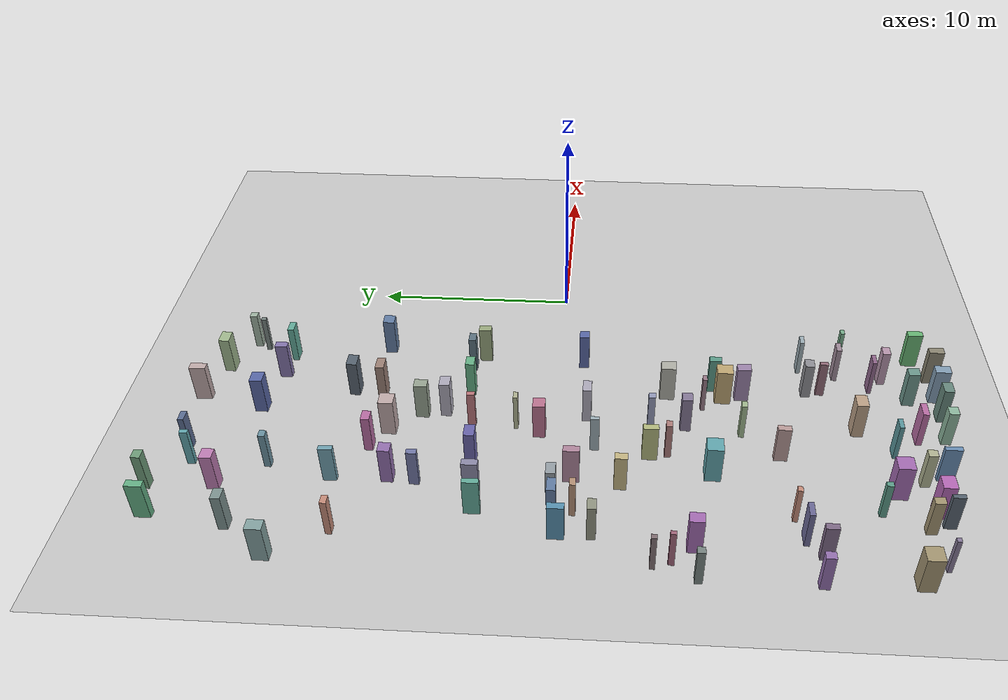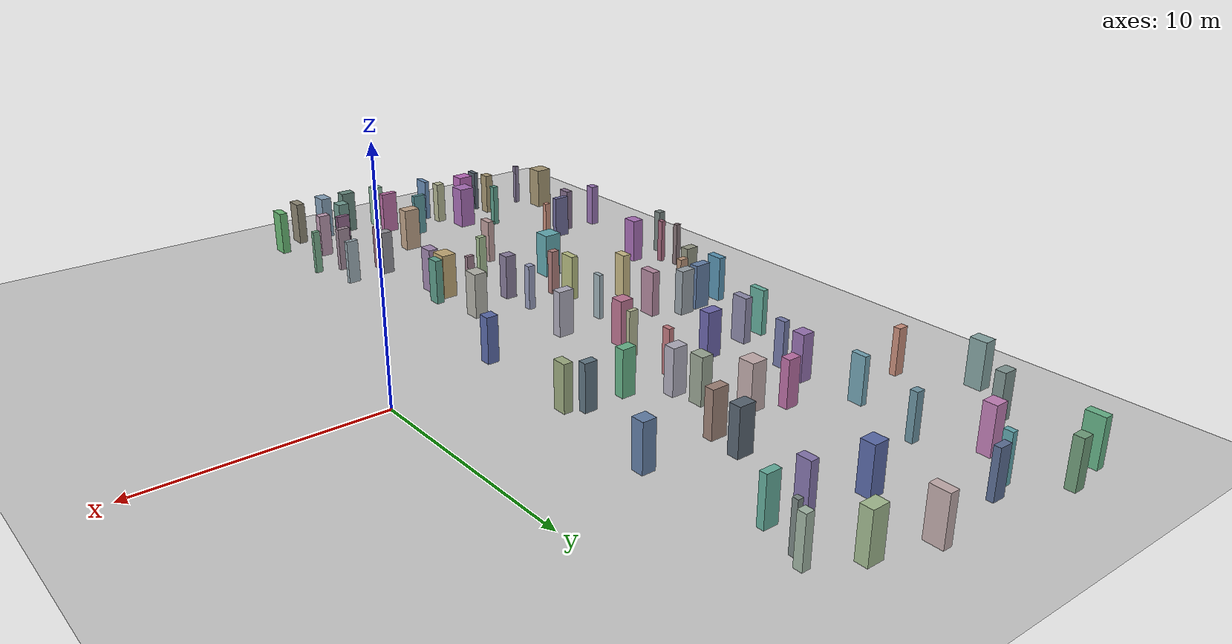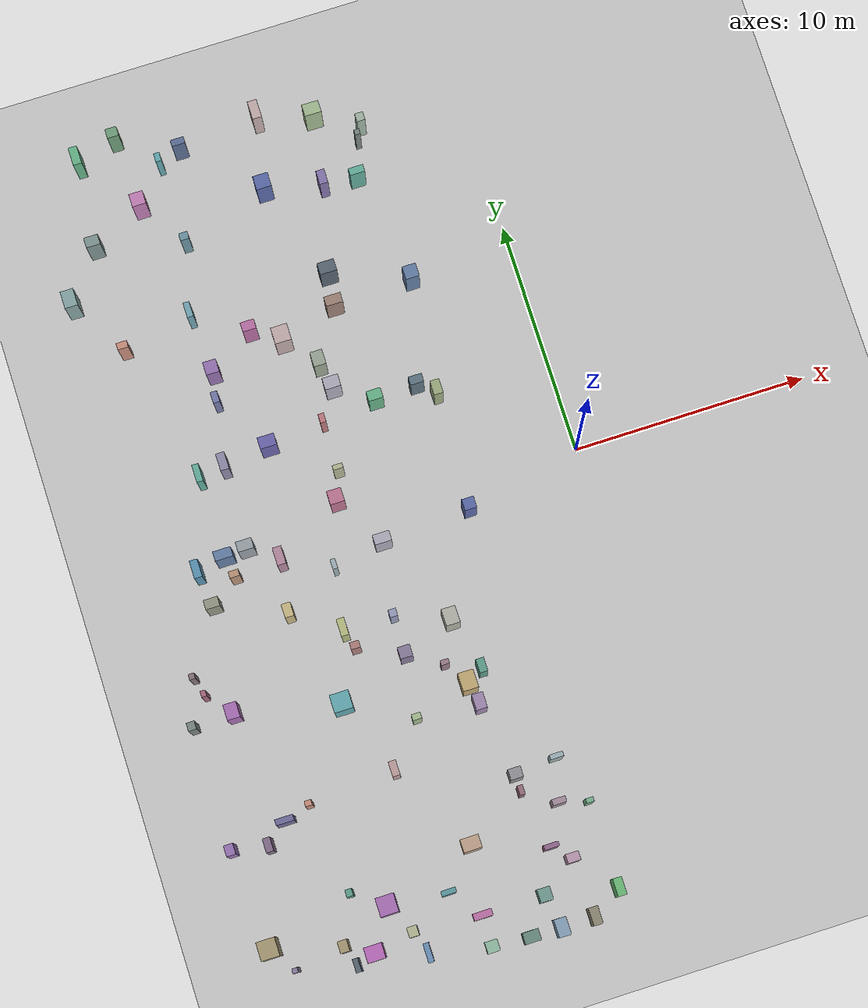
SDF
<sdf version="1.6">
 <world name="mockamap_single_floor">
  <include><uri>model://sun</uri></include>
  <include><uri>model://ground_plane</uri></include>
  <model name="mockamap_box_000">
   <static>true</static>
   <pose>-15.0321 -17.5841 1.0000 0 0 0</pose>
   <link name="link">
    <collision name="collision"><geometry><box><size>0.2267 0.5743 2.0000</size></box></geometry></collision>
    <visual name="visual">
     <geometry><box><size>0.2267 0.5743 2.0000</size></box></geometry>
     <material><ambient>0.350 0.400 0.450 1.000</ambient><diffuse>0.350 0.400 0.450 1.000</diffuse></material>
    </visual>
   </link>
  </model>
  <model name="mockamap_box_003">
   <static>true</static>
   <pose>-15.3379 3.4456 1.0000 0 0 0</pose>
   <link name="link">
    <collision name="collision"><geometry><box><size>0.2746 0.7535 2.0000</size></box></geometry></collision>
    <visual name="visual">
     <geometry><box><size>0.2746 0.7535 2.0000</size></box></geometry>
     <material><ambient>0.399 0.691 0.621 1.000</ambient><diffuse>0.399 0.691 0.621 1.000</diffuse></material>
    </visual>
   </link>
  </model>
  <model name="mockamap_box_010">
   <static>true</static>
   <pose>-13.1838 -15.6728 1.0000 0 0 0</pose>
   <link name="link">
    <collision name="collision"><geometry><box><size>0.7708 0.7841 2.0000</size></box></geometry></collision>
    <visual name="visual">
     <geometry><box><size>0.7708 0.7841 2.0000</size></box></geometry>
     <material><ambient>0.665 0.435 0.720 1.000</ambient><diffuse>0.665 0.435 0.720 1.000</diffuse></material>
    </visual>
   </link>
  </model>
  <model name="mockamap_box_013">
   <static>true</static>
   <pose>-9.7718 1.9524 1.0000 0 0 0</pose>
   <link name="link">
    <collision name="collision"><geometry><box><size>0.4269 0.2035 2.0000</size></box></geometry></collision>
    <visual name="visual">
     <geometry><box><size>0.4269 0.2035 2.0000</size></box></geometry>
     <material><ambient>0.715 0.726 0.591 1.000</ambient><diffuse>0.715 0.726 0.591 1.000</diffuse></material>
    </visual>
   </link>
  </model>
  <model name="mockamap_box_014">
   <static>true</static>
   <pose>-12.9841 13.2362 1.0000 0 0 0</pose>
   <link name="link">
    <collision name="collision"><geometry><box><size>0.3698 0.3169 2.0000</size></box></geometry></collision>
    <visual name="visual">
     <geometry><box><size>0.3698 0.3169 2.0000</size></box></geometry>
     <material><ambient>0.431 0.589 0.648 1.000</ambient><diffuse>0.431 0.589 0.648 1.000</diffuse></material>
    </visual>
   </link>
  </model>
  <model name="mockamap_box_015">
   <static>true</static>
   <pose>-13.5221 7.5409 1.0000 0 0 0</pose>
   <link name="link">
    <collision name="collision"><geometry><box><size>0.5592 0.5615 2.0000</size></box></geometry></collision>
    <visual name="visual">
     <geometry><box><size>0.5592 0.5615 2.0000</size></box></geometry>
     <material><ambient>0.597 0.453 0.705 1.000</ambient><diffuse>0.597 0.453 0.705 1.000</diffuse></material>
    </visual>
   </link>
  </model>
  <model name="mockamap_box_016">
   <static>true</static>
   <pose>-7.3450 -8.0702 1.0000 0 0 0</pose>
   <link name="link">
    <collision name="collision"><geometry><box><size>0.6593 0.7731 2.0000</size></box></geometry></collision>
    <visual name="visual">
     <geometry><box><size>0.6593 0.7731 2.0000</size></box></geometry>
     <material><ambient>0.764 0.666 0.462 1.000</ambient><diffuse>0.764 0.666 0.462 1.000</diffuse></material>
    </visual>
   </link>
  </model>
  <model name="mockamap_box_017">
   <static>true</static>
   <pose>-18.5719 -6.4431 1.0000 0 0 0</pose>
   <link name="link">
    <collision name="collision"><geometry><box><size>0.3442 0.3489 2.0000</size></box></geometry></collision>
    <visual name="visual">
     <geometry><box><size>0.3442 0.3489 2.0000</size></box></geometry>
     <material><ambient>0.480 0.530 0.519 1.000</ambient><diffuse>0.480 0.530 0.519 1.000</diffuse></material>
    </visual>
   </link>
  </model>
  <model name="mockamap_box_018">
   <static>true</static>
   <pose>-6.2782 16.9180 1.0000 0 0 0</pose>
   <link name="link">
    <collision name="collision"><geometry><box><size>0.7214 0.5166 2.0000</size></box></geometry></collision>
    <visual name="visual">
     <geometry><box><size>0.7214 0.5166 2.0000</size></box></geometry>
     <material><ambient>0.647 0.743 0.576 1.000</ambient><diffuse>0.647 0.743 0.576 1.000</diffuse></material>
    </visual>
   </link>
  </model>
  <model name="mockamap_box_019">
   <static>true</static>
   <pose>-10.6722 -15.9207 1.0000 0 0 0</pose>
   <link name="link">
    <collision name="collision"><geometry><box><size>0.6190 0.2158 2.0000</size></box></geometry></collision>
    <visual name="visual">
     <geometry><box><size>0.6190 0.2158 2.0000</size></box></geometry>
     <material><ambient>0.363 0.607 0.633 1.000</ambient><diffuse>0.363 0.607 0.633 1.000</diffuse></material>
    </visual>
   </link>
  </model>
  <model name="mockamap_box_021">
   <static>true</static>
   <pose>-8.9207 -1.4252 1.0000 0 0 0</pose>
   <link name="link">
    <collision name="collision"><geometry><box><size>0.7100 0.4261 2.0000</size></box></geometry></collision>
    <visual name="visual">
     <geometry><box><size>0.7100 0.4261 2.0000</size></box></geometry>
     <material><ambient>0.696 0.683 0.747 1.000</ambient><diffuse>0.696 0.683 0.747 1.000</diffuse></material>
    </visual>
   </link>
  </model>
  <model name="mockamap_box_022">
   <static>true</static>
   <pose>-8.0454 -18.6199 1.0000 0 0 0</pose>
   <link name="link">
    <collision name="collision"><geometry><box><size>0.6732 0.4795 2.0000</size></box></geometry></collision>
    <visual name="visual">
     <geometry><box><size>0.6732 0.4795 2.0000</size></box></geometry>
     <material><ambient>0.413 0.547 0.504 1.000</ambient><diffuse>0.413 0.547 0.504 1.000</diffuse></material>
    </visual>
   </link>
  </model>
  <model name="mockamap_box_024">
   <static>true</static>
   <pose>-11.2739 -10.5561 1.0000 0 0 0</pose>
   <link name="link">
    <collision name="collision"><geometry><box><size>0.3173 0.6329 2.0000</size></box></geometry></collision>
    <visual name="visual">
     <geometry><box><size>0.3173 0.6329 2.0000</size></box></geometry>
     <material><ambient>0.746 0.624 0.618 1.000</ambient><diffuse>0.746 0.624 0.618 1.000</diffuse></material>
    </visual>
   </link>
  </model>
  <model name="mockamap_box_025">
   <static>true</static>
   <pose>-13.7292 6.2781 1.0000 0 0 0</pose>
   <link name="link">
    <collision name="collision"><geometry><box><size>0.2813 0.4722 2.0000</size></box></geometry></collision>
    <visual name="visual">
     <geometry><box><size>0.2813 0.4722 2.0000</size></box></geometry>
     <material><ambient>0.462 0.488 0.675 1.000</ambient><diffuse>0.462 0.488 0.675 1.000</diffuse></material>
    </visual>
   </link>
  </model>
  <model name="mockamap_box_026">
   <static>true</static>
   <pose>-11.1184 -1.8605 1.0000 0 0 0</pose>
   <link name="link">
    <collision name="collision"><geometry><box><size>0.2078 0.4240 2.0000</size></box></geometry></collision>
    <visual name="visual">
     <geometry><box><size>0.2078 0.4240 2.0000</size></box></geometry>
     <material><ambient>0.629 0.701 0.732 1.000</ambient><diffuse>0.629 0.701 0.732 1.000</diffuse></material>
    </visual>
   </link>
  </model>
  <model name="mockamap_box_027">
   <static>true</static>
   <pose>-14.9859 -10.8422 1.0000 0 0 0</pose>
   <link name="link">
    <collision name="collision"><geometry><box><size>0.2858 0.2299 2.0000</size></box></geometry></collision>
    <visual name="visual">
     <geometry><box><size>0.2858 0.2299 2.0000</size></box></geometry>
     <material><ambient>0.796 0.565 0.489 1.000</ambient><diffuse>0.796 0.565 0.489 1.000</diffuse></material>
    </visual>
   </link>
  </model>
  <model name="mockamap_box_028">
   <static>true</static>
   <pose>-17.0172 -11.9449 1.0000 0 0 0</pose>
   <link name="link">
    <collision name="collision"><geometry><box><size>0.3143 0.5909 2.0000</size></box></geometry></collision>
    <visual name="visual">
     <geometry><box><size>0.3143 0.5909 2.0000</size></box></geometry>
     <material><ambient>0.512 0.428 0.546 1.000</ambient><diffuse>0.512 0.428 0.546 1.000</diffuse></material>
    </visual>
   </link>
  </model>
  <model name="mockamap_box_030">
   <static>true</static>
   <pose>-15.3202 -0.0906 1.0000 0 0 0</pose>
   <link name="link">
    <collision name="collision"><geometry><box><size>0.7618 0.4082 2.0000</size></box></geometry></collision>
    <visual name="visual">
     <geometry><box><size>0.7618 0.4082 2.0000</size></box></geometry>
     <material><ambient>0.395 0.505 0.660 1.000</ambient><diffuse>0.395 0.505 0.660 1.000</diffuse></material>
    </visual>
   </link>
  </model>
  <model name="mockamap_box_032">
   <static>true</static>
   <pose>-15.1227 -1.0097 1.0000 0 0 0</pose>
   <link name="link">
    <collision name="collision"><geometry><box><size>0.4203 0.2797 2.0000</size></box></geometry></collision>
    <visual name="visual">
     <geometry><box><size>0.4203 0.2797 2.0000</size></box></geometry>
     <material><ambient>0.728 0.582 0.474 1.000</ambient><diffuse>0.728 0.582 0.474 1.000</diffuse></material>
    </visual>
   </link>
  </model>
  <model name="mockamap_box_034">
   <static>true</static>
   <pose>-9.1957 6.5623 1.0000 0 0 0</pose>
   <link name="link">
    <collision name="collision"><geometry><box><size>0.5228 0.6341 2.0000</size></box></geometry></collision>
    <visual name="visual">
     <geometry><box><size>0.5228 0.6341 2.0000</size></box></geometry>
     <material><ambient>0.611 0.659 0.588 1.000</ambient><diffuse>0.611 0.659 0.588 1.000</diffuse></material>
    </visual>
   </link>
  </model>
  <model name="mockamap_box_037">
   <static>true</static>
   <pose>-18.2314 -15.8954 1.0000 0 0 0</pose>
   <link name="link">
    <collision name="collision"><geometry><box><size>0.7818 0.7815 2.0000</size></box></geometry></collision>
    <visual name="visual">
     <geometry><box><size>0.7818 0.7815 2.0000</size></box></geometry>
     <material><ambient>0.660 0.600 0.459 1.000</ambient><diffuse>0.660 0.600 0.459 1.000</diffuse></material>
    </visual>
   </link>
  </model>
  <model name="mockamap_box_038">
   <static>true</static>
   <pose>-5.5987 4.4739 1.0000 0 0 0</pose>
   <link name="link">
    <collision name="collision"><geometry><box><size>0.5717 0.3587 2.0000</size></box></geometry></collision>
    <visual name="visual">
     <geometry><box><size>0.5717 0.3587 2.0000</size></box></geometry>
     <material><ambient>0.377 0.463 0.516 1.000</ambient><diffuse>0.377 0.463 0.516 1.000</diffuse></material>
    </visual>
   </link>
  </model>
  <model name="mockamap_box_042">
   <static>true</static>
   <pose>-9.4270 -4.5137 1.0000 0 0 0</pose>
   <link name="link">
    <collision name="collision"><geometry><box><size>0.3187 0.3254 2.0000</size></box></geometry></collision>
    <visual name="visual">
     <geometry><box><size>0.3187 0.3254 2.0000</size></box></geometry>
     <material><ambient>0.593 0.617 0.744 1.000</ambient><diffuse>0.593 0.617 0.744 1.000</diffuse></material>
    </visual>
   </link>
  </model>
  <model name="mockamap_box_043">
   <static>true</static>
   <pose>-9.7795 4.0861 1.0000 0 0 0</pose>
   <link name="link">
    <collision name="collision"><geometry><box><size>0.2436 0.3837 2.0000</size></box></geometry></collision>
    <visual name="visual">
     <geometry><box><size>0.2436 0.3837 2.0000</size></box></geometry>
     <material><ambient>0.760 0.481 0.501 1.000</ambient><diffuse>0.760 0.481 0.501 1.000</diffuse></material>
    </visual>
   </link>
  </model>
  <model name="mockamap_box_046">
   <static>true</static>
   <pose>-9.1847 14.5162 1.0000 0 0 0</pose>
   <link name="link">
    <collision name="collision"><geometry><box><size>0.6496 0.6085 2.0000</size></box></geometry></collision>
    <visual name="visual">
     <geometry><box><size>0.6496 0.6085 2.0000</size></box></geometry>
     <material><ambient>0.359 0.421 0.672 1.000</ambient><diffuse>0.359 0.421 0.672 1.000</diffuse></material>
    </visual>
   </link>
  </model>
  <model name="mockamap_box_049">
   <static>true</static>
   <pose>-7.4207 4.3815 1.0000 0 0 0</pose>
   <link name="link">
    <collision name="collision"><geometry><box><size>0.6167 0.4328 2.0000</size></box></geometry></collision>
    <visual name="visual">
     <geometry><box><size>0.6167 0.4328 2.0000</size></box></geometry>
     <material><ambient>0.408 0.712 0.543 1.000</ambient><diffuse>0.408 0.712 0.543 1.000</diffuse></material>
    </visual>
   </link>
  </model>
  <model name="mockamap_box_051">
   <static>true</static>
   <pose>-9.6437 -17.1984 1.0000 0 0 0</pose>
   <link name="link">
    <collision name="collision"><geometry><box><size>0.7874 0.2933 2.0000</size></box></geometry></collision>
    <visual name="visual">
     <geometry><box><size>0.7874 0.2933 2.0000</size></box></geometry>
     <material><ambient>0.741 0.439 0.657 1.000</ambient><diffuse>0.741 0.439 0.657 1.000</diffuse></material>
    </visual>
   </link>
  </model>
  <model name="mockamap_box_052">
   <static>true</static>
   <pose>-13.7165 10.1662 1.0000 0 0 0</pose>
   <link name="link">
    <collision name="collision"><geometry><box><size>0.2646 0.6470 2.0000</size></box></geometry></collision>
    <visual name="visual">
     <geometry><box><size>0.2646 0.6470 2.0000</size></box></geometry>
     <material><ambient>0.458 0.652 0.714 1.000</ambient><diffuse>0.458 0.652 0.714 1.000</diffuse></material>
    </visual>
   </link>
  </model>
  <model name="mockamap_box_055">
   <static>true</static>
   <pose>-16.6939 14.1934 1.0000 0 0 0</pose>
   <link name="link">
    <collision name="collision"><geometry><box><size>0.6025 0.4378 2.0000</size></box></geometry></collision>
    <visual name="visual">
     <geometry><box><size>0.6025 0.4378 2.0000</size></box></geometry>
     <material><ambient>0.507 0.593 0.585 1.000</ambient><diffuse>0.507 0.593 0.585 1.000</diffuse></material>
    </visual>
   </link>
  </model>
  <model name="mockamap_box_057">
   <static>true</static>
   <pose>-13.0534 16.8394 1.0000 0 0 0</pose>
   <link name="link">
    <collision name="collision"><geometry><box><size>0.2445 0.3728 2.0000</size></box></geometry></collision>
    <visual name="visual">
     <geometry><box><size>0.2445 0.3728 2.0000</size></box></geometry>
     <material><ambient>0.390 0.669 0.699 1.000</ambient><diffuse>0.390 0.669 0.699 1.000</diffuse></material>
    </visual>
   </link>
  </model>
  <model name="mockamap_box_058">
   <static>true</static>
   <pose>-5.3612 -18.6135 1.0000 0 0 0</pose>
   <link name="link">
    <collision name="collision"><geometry><box><size>0.3967 0.7427 2.0000</size></box></geometry></collision>
    <visual name="visual">
     <geometry><box><size>0.3967 0.7427 2.0000</size></box></geometry>
     <material><ambient>0.557 0.533 0.456 1.000</ambient><diffuse>0.557 0.533 0.456 1.000</diffuse></material>
    </visual>
   </link>
  </model>
  <model name="mockamap_box_062">
   <static>true</static>
   <pose>-8.5721 17.6052 1.0000 0 0 0</pose>
   <link name="link">
    <collision name="collision"><geometry><box><size>0.3972 0.7924 2.0000</size></box></geometry></collision>
    <visual name="visual">
     <geometry><box><size>0.3972 0.7924 2.0000</size></box></geometry>
     <material><ambient>0.773 0.687 0.684 1.000</ambient><diffuse>0.773 0.687 0.684 1.000</diffuse></material>
    </visual>
   </link>
  </model>
  <model name="mockamap_box_065">
   <static>true</static>
   <pose>-6.6294 -7.6510 1.0000 0 0 0</pose>
   <link name="link">
    <collision name="collision"><geometry><box><size>0.3435 0.5827 2.0000</size></box></geometry></collision>
    <visual name="visual">
     <geometry><box><size>0.3435 0.5827 2.0000</size></box></geometry>
     <material><ambient>0.372 0.628 0.555 1.000</ambient><diffuse>0.372 0.628 0.555 1.000</diffuse></material>
    </visual>
   </link>
  </model>
  <model name="mockamap_box_066">
   <static>true</static>
   <pose>-9.4309 -6.1793 1.0000 0 0 0</pose>
   <link name="link">
    <collision name="collision"><geometry><box><size>0.5277 0.4964 2.0000</size></box></geometry></collision>
    <visual name="visual">
     <geometry><box><size>0.5277 0.4964 2.0000</size></box></geometry>
     <material><ambient>0.539 0.491 0.612 1.000</ambient><diffuse>0.539 0.491 0.612 1.000</diffuse></material>
    </visual>
   </link>
  </model>
  <model name="mockamap_box_069">
   <static>true</static>
   <pose>-6.6600 -12.9403 1.0000 0 0 0</pose>
   <link name="link">
    <collision name="collision"><geometry><box><size>0.2327 0.3994 2.0000</size></box></geometry></collision>
    <visual name="visual">
     <geometry><box><size>0.2327 0.3994 2.0000</size></box></geometry>
     <material><ambient>0.589 0.431 0.483 1.000</ambient><diffuse>0.589 0.431 0.483 1.000</diffuse></material>
    </visual>
   </link>
  </model>
  <model name="mockamap_box_070">
   <static>true</static>
   <pose>-9.2351 -14.3669 1.0000 0 0 0</pose>
   <link name="link">
    <collision name="collision"><geometry><box><size>0.7675 0.5532 2.0000</size></box></geometry></collision>
    <visual name="visual">
     <geometry><box><size>0.7675 0.5532 2.0000</size></box></geometry>
     <material><ambient>0.755 0.645 0.540 1.000</ambient><diffuse>0.755 0.645 0.540 1.000</diffuse></material>
    </visual>
   </link>
  </model>
  <model name="mockamap_box_072">
   <static>true</static>
   <pose>-4.4467 15.9513 1.0000 0 0 0</pose>
   <link name="link">
    <collision name="collision"><geometry><box><size>0.3530 0.3626 2.0000</size></box></geometry></collision>
    <visual name="visual">
     <geometry><box><size>0.3530 0.3626 2.0000</size></box></geometry>
     <material><ambient>0.638 0.722 0.654 1.000</ambient><diffuse>0.638 0.722 0.654 1.000</diffuse></material>
    </visual>
   </link>
  </model>
  <model name="mockamap_box_080">
   <static>true</static>
   <pose>-4.8874 3.9136 1.0000 0 0 0</pose>
   <link name="link">
    <collision name="collision"><geometry><box><size>0.3942 0.6128 2.0000</size></box></geometry></collision>
    <visual name="visual">
     <geometry><box><size>0.3942 0.6128 2.0000</size></box></geometry>
     <material><ambient>0.620 0.680 0.510 1.000</ambient><diffuse>0.620 0.680 0.510 1.000</diffuse></material>
    </visual>
   </link>
  </model>
  <model name="mockamap_box_087">
   <static>true</static>
   <pose>-16.0971 -11.1940 1.0000 0 0 0</pose>
   <link name="link">
    <collision name="collision"><geometry><box><size>0.7557 0.2516 2.0000</size></box></geometry></collision>
    <visual name="visual">
     <geometry><box><size>0.7557 0.2516 2.0000</size></box></geometry>
     <material><ambient>0.435 0.425 0.609 1.000</ambient><diffuse>0.435 0.425 0.609 1.000</diffuse></material>
    </visual>
   </link>
  </model>
  <model name="mockamap_box_088">
   <static>true</static>
   <pose>-14.3647 -0.0048 1.0000 0 0 0</pose>
   <link name="link">
    <collision name="collision"><geometry><box><size>0.6737 0.4387 2.0000</size></box></geometry></collision>
    <visual name="visual">
     <geometry><box><size>0.6737 0.4387 2.0000</size></box></geometry>
     <material><ambient>0.602 0.638 0.666 1.000</ambient><diffuse>0.602 0.638 0.666 1.000</diffuse></material>
    </visual>
   </link>
  </model>
  <model name="mockamap_box_089">
   <static>true</static>
   <pose>-14.3711 15.3674 1.0000 0 0 0</pose>
   <link name="link">
    <collision name="collision"><geometry><box><size>0.5919 0.5640 2.0000</size></box></geometry></collision>
    <visual name="visual">
     <geometry><box><size>0.5919 0.5640 2.0000</size></box></geometry>
     <material><ambient>0.768 0.502 0.723 1.000</ambient><diffuse>0.768 0.502 0.723 1.000</diffuse></material>
    </visual>
   </link>
  </model>
  <model name="mockamap_box_092">
   <static>true</static>
   <pose>-12.0533 17.2330 1.0000 0 0 0</pose>
   <link name="link">
    <collision name="collision"><geometry><box><size>0.5706 0.2816 2.0000</size></box></geometry></collision>
    <visual name="visual">
     <geometry><box><size>0.5706 0.2816 2.0000</size></box></geometry>
     <material><ambient>0.368 0.442 0.594 1.000</ambient><diffuse>0.368 0.442 0.594 1.000</diffuse></material>
    </visual>
   </link>
  </model>
  <model name="mockamap_box_093">
   <static>true</static>
   <pose>-18.2984 12.1214 1.0000 0 0 0</pose>
   <link name="link">
    <collision name="collision"><geometry><box><size>0.5520 0.7406 2.0000</size></box></geometry></collision>
    <visual name="visual">
     <geometry><box><size>0.5520 0.7406 2.0000</size></box></geometry>
     <material><ambient>0.534 0.655 0.651 1.000</ambient><diffuse>0.534 0.655 0.651 1.000</diffuse></material>
    </visual>
   </link>
  </model>
  <model name="mockamap_box_095">
   <static>true</static>
   <pose>-4.0843 -17.8071 1.0000 0 0 0</pose>
   <link name="link">
    <collision name="collision"><geometry><box><size>0.3746 0.7478 2.0000</size></box></geometry></collision>
    <visual name="visual">
     <geometry><box><size>0.3746 0.7478 2.0000</size></box></geometry>
     <material><ambient>0.417 0.733 0.465 1.000</ambient><diffuse>0.417 0.733 0.465 1.000</diffuse></material>
    </visual>
   </link>
  </model>
  <model name="mockamap_box_096">
   <static>true</static>
   <pose>-16.3439 -1.8893 1.0000 0 0 0</pose>
   <link name="link">
    <collision name="collision"><geometry><box><size>0.6021 0.4051 2.0000</size></box></geometry></collision>
    <visual name="visual">
     <geometry><box><size>0.6021 0.4051 2.0000</size></box></geometry>
     <material><ambient>0.584 0.596 0.522 1.000</ambient><diffuse>0.584 0.596 0.522 1.000</diffuse></material>
    </visual>
   </link>
  </model>
  <model name="mockamap_box_097">
   <static>true</static>
   <pose>-10.2213 0.8008 1.0000 0 0 0</pose>
   <link name="link">
    <collision name="collision"><geometry><box><size>0.6115 0.5882 2.0000</size></box></geometry></collision>
    <visual name="visual">
     <geometry><box><size>0.6115 0.5882 2.0000</size></box></geometry>
     <material><ambient>0.750 0.460 0.579 1.000</ambient><diffuse>0.750 0.460 0.579 1.000</diffuse></material>
    </visual>
   </link>
  </model>
  <model name="mockamap_box_099">
   <static>true</static>
   <pose>-7.1630 -9.0121 1.0000 0 0 0</pose>
   <link name="link">
    <collision name="collision"><geometry><box><size>0.4683 0.6743 2.0000</size></box></geometry></collision>
    <visual name="visual">
     <geometry><box><size>0.4683 0.6743 2.0000</size></box></geometry>
     <material><ambient>0.633 0.536 0.693 1.000</ambient><diffuse>0.633 0.536 0.693 1.000</diffuse></material>
    </visual>
   </link>
  </model>
  <model name="mockamap_box_100">
   <static>true</static>
   <pose>-7.6916 10.1660 1.0000 0 0 0</pose>
   <link name="link">
    <collision name="collision"><geometry><box><size>0.7321 0.5083 2.0000</size></box></geometry></collision>
    <visual name="visual">
     <geometry><box><size>0.7321 0.5083 2.0000</size></box></geometry>
     <material><ambient>0.350 0.400 0.450 1.000</ambient><diffuse>0.350 0.400 0.450 1.000</diffuse></material>
    </visual>
   </link>
  </model>
  <model name="mockamap_box_103">
   <static>true</static>
   <pose>-5.2725 13.7795 1.0000 0 0 0</pose>
   <link name="link">
    <collision name="collision"><geometry><box><size>0.6410 0.3128 2.0000</size></box></geometry></collision>
    <visual name="visual">
     <geometry><box><size>0.6410 0.3128 2.0000</size></box></geometry>
     <material><ambient>0.399 0.691 0.621 1.000</ambient><diffuse>0.399 0.691 0.621 1.000</diffuse></material>
    </visual>
   </link>
  </model>
  <model name="mockamap_box_104">
   <static>true</static>
   <pose>-14.2221 3.6045 1.0000 0 0 0</pose>
   <link name="link">
    <collision name="collision"><geometry><box><size>0.3641 0.7402 2.0000</size></box></geometry></collision>
    <visual name="visual">
     <geometry><box><size>0.3641 0.7402 2.0000</size></box></geometry>
     <material><ambient>0.566 0.554 0.678 1.000</ambient><diffuse>0.566 0.554 0.678 1.000</diffuse></material>
    </visual>
   </link>
  </model>
  <model name="mockamap_box_105">
   <static>true</static>
   <pose>-14.2196 -17.3290 1.0000 0 0 0</pose>
   <link name="link">
    <collision name="collision"><geometry><box><size>0.7562 0.6415 2.0000</size></box></geometry></collision>
    <visual name="visual">
     <geometry><box><size>0.7562 0.6415 2.0000</size></box></geometry>
     <material><ambient>0.732 0.418 0.735 1.000</ambient><diffuse>0.732 0.418 0.735 1.000</diffuse></material>
    </visual>
   </link>
  </model>
  <model name="mockamap_box_106">
   <static>true</static>
   <pose>-14.5753 18.4580 1.0000 0 0 0</pose>
   <link name="link">
    <collision name="collision"><geometry><box><size>0.4896 0.4093 2.0000</size></box></geometry></collision>
    <visual name="visual">
     <geometry><box><size>0.4896 0.4093 2.0000</size></box></geometry>
     <material><ambient>0.449 0.631 0.492 1.000</ambient><diffuse>0.449 0.631 0.492 1.000</diffuse></material>
    </visual>
   </link>
  </model>
  <model name="mockamap_box_107">
   <static>true</static>
   <pose>-8.0218 -7.0729 1.0000 0 0 0</pose>
   <link name="link">
    <collision name="collision"><geometry><box><size>0.3556 0.2070 2.0000</size></box></geometry></collision>
    <visual name="visual">
     <geometry><box><size>0.3556 0.2070 2.0000</size></box></geometry>
     <material><ambient>0.615 0.494 0.549 1.000</ambient><diffuse>0.615 0.494 0.549 1.000</diffuse></material>
    </visual>
   </link>
  </model>
  <model name="mockamap_box_110">
   <static>true</static>
   <pose>-16.8455 -6.3477 1.0000 0 0 0</pose>
   <link name="link">
    <collision name="collision"><geometry><box><size>0.5450 0.6635 2.0000</size></box></geometry></collision>
    <visual name="visual">
     <geometry><box><size>0.5450 0.6635 2.0000</size></box></geometry>
     <material><ambient>0.665 0.435 0.720 1.000</ambient><diffuse>0.665 0.435 0.720 1.000</diffuse></material>
    </visual>
   </link>
  </model>
  <model name="mockamap_box_113">
   <static>true</static>
   <pose>-12.5093 -16.9843 1.0000 0 0 0</pose>
   <link name="link">
    <collision name="collision"><geometry><box><size>0.4164 0.4355 2.0000</size></box></geometry></collision>
    <visual name="visual">
     <geometry><box><size>0.4164 0.4355 2.0000</size></box></geometry>
     <material><ambient>0.715 0.726 0.591 1.000</ambient><diffuse>0.715 0.726 0.591 1.000</diffuse></material>
    </visual>
   </link>
  </model>
  <model name="mockamap_box_115">
   <static>true</static>
   <pose>-18.5431 -11.6731 1.0000 0 0 0</pose>
   <link name="link">
    <collision name="collision"><geometry><box><size>0.3886 0.4598 2.0000</size></box></geometry></collision>
    <visual name="visual">
     <geometry><box><size>0.3886 0.4598 2.0000</size></box></geometry>
     <material><ambient>0.597 0.453 0.705 1.000</ambient><diffuse>0.597 0.453 0.705 1.000</diffuse></material>
    </visual>
   </link>
  </model>
  <model name="mockamap_box_117">
   <static>true</static>
   <pose>-4.7593 15.3571 1.0000 0 0 0</pose>
   <link name="link">
    <collision name="collision"><geometry><box><size>0.2274 0.2353 2.0000</size></box></geometry></collision>
    <visual name="visual">
     <geometry><box><size>0.2274 0.2353 2.0000</size></box></geometry>
     <material><ambient>0.480 0.530 0.519 1.000</ambient><diffuse>0.480 0.530 0.519 1.000</diffuse></material>
    </visual>
   </link>
  </model>
  <model name="mockamap_box_118">
   <static>true</static>
   <pose>-9.7827 -8.8349 1.0000 0 0 0</pose>
   <link name="link">
    <collision name="collision"><geometry><box><size>0.3822 0.2566 2.0000</size></box></geometry></collision>
    <visual name="visual">
     <geometry><box><size>0.3822 0.2566 2.0000</size></box></geometry>
     <material><ambient>0.647 0.743 0.576 1.000</ambient><diffuse>0.647 0.743 0.576 1.000</diffuse></material>
    </visual>
   </link>
  </model>
  <model name="mockamap_box_120">
   <static>true</static>
   <pose>-6.7393 13.9405 1.0000 0 0 0</pose>
   <link name="link">
    <collision name="collision"><geometry><box><size>0.3603 0.6055 2.0000</size></box></geometry></collision>
    <visual name="visual">
     <geometry><box><size>0.3603 0.6055 2.0000</size></box></geometry>
     <material><ambient>0.530 0.470 0.690 1.000</ambient><diffuse>0.530 0.470 0.690 1.000</diffuse></material>
    </visual>
   </link>
  </model>
  <model name="mockamap_box_121">
   <static>true</static>
   <pose>-8.9622 5.4263 1.0000 0 0 0</pose>
   <link name="link">
    <collision name="collision"><geometry><box><size>0.6727 0.5106 2.0000</size></box></geometry></collision>
    <visual name="visual">
     <geometry><box><size>0.6727 0.5106 2.0000</size></box></geometry>
     <material><ambient>0.696 0.683 0.747 1.000</ambient><diffuse>0.696 0.683 0.747 1.000</diffuse></material>
    </visual>
   </link>
  </model>
  <model name="mockamap_box_123">
   <static>true</static>
   <pose>-6.1860 -15.4290 1.0000 0 0 0</pose>
   <link name="link">
    <collision name="collision"><geometry><box><size>0.6223 0.2007 2.0000</size></box></geometry></collision>
    <visual name="visual">
     <geometry><box><size>0.6223 0.2007 2.0000</size></box></geometry>
     <material><ambient>0.579 0.411 0.561 1.000</ambient><diffuse>0.579 0.411 0.561 1.000</diffuse></material>
    </visual>
   </link>
  </model>
  <model name="mockamap_box_126">
   <static>true</static>
   <pose>-4.8715 -12.0527 1.0000 0 0 0</pose>
   <link name="link">
    <collision name="collision"><geometry><box><size>0.5554 0.2058 2.0000</size></box></geometry></collision>
    <visual name="visual">
     <geometry><box><size>0.5554 0.2058 2.0000</size></box></geometry>
     <material><ambient>0.629 0.701 0.732 1.000</ambient><diffuse>0.629 0.701 0.732 1.000</diffuse></material>
    </visual>
   </link>
  </model>
  <model name="mockamap_box_127">
   <static>true</static>
   <pose>-16.7550 9.5406 1.0000 0 0 0</pose>
   <link name="link">
    <collision name="collision"><geometry><box><size>0.4515 0.2884 2.0000</size></box></geometry></collision>
    <visual name="visual">
     <geometry><box><size>0.4515 0.2884 2.0000</size></box></geometry>
     <material><ambient>0.796 0.565 0.489 1.000</ambient><diffuse>0.796 0.565 0.489 1.000</diffuse></material>
    </visual>
   </link>
  </model>
  <model name="mockamap_box_130">
   <static>true</static>
   <pose>-4.4280 8.9231 1.0000 0 0 0</pose>
   <link name="link">
    <collision name="collision"><geometry><box><size>0.5840 0.5663 2.0000</size></box></geometry></collision>
    <visual name="visual">
     <geometry><box><size>0.5840 0.5663 2.0000</size></box></geometry>
     <material><ambient>0.395 0.505 0.660 1.000</ambient><diffuse>0.395 0.505 0.660 1.000</diffuse></material>
    </visual>
   </link>
  </model>
  <model name="mockamap_box_137">
   <static>true</static>
   <pose>-15.3239 -16.7074 1.0000 0 0 0</pose>
   <link name="link">
    <collision name="collision"><geometry><box><size>0.3898 0.4964 2.0000</size></box></geometry></collision>
    <visual name="visual">
     <geometry><box><size>0.3898 0.4964 2.0000</size></box></geometry>
     <material><ambient>0.660 0.600 0.459 1.000</ambient><diffuse>0.660 0.600 0.459 1.000</diffuse></material>
    </visual>
   </link>
  </model>
  <model name="mockamap_box_140">
   <static>true</static>
   <pose>-13.1485 -0.8551 1.0000 0 0 0</pose>
   <link name="link">
    <collision name="collision"><geometry><box><size>0.3712 0.7563 2.0000</size></box></geometry></collision>
    <visual name="visual">
     <geometry><box><size>0.3712 0.7563 2.0000</size></box></geometry>
     <material><ambient>0.710 0.540 0.630 1.000</ambient><diffuse>0.710 0.540 0.630 1.000</diffuse></material>
    </visual>
   </link>
  </model>
  <model name="mockamap_box_141">
   <static>true</static>
   <pose>-12.2291 3.8525 1.0000 0 0 0</pose>
   <link name="link">
    <collision name="collision"><geometry><box><size>0.7114 0.4961 2.0000</size></box></geometry></collision>
    <visual name="visual">
     <geometry><box><size>0.7114 0.4961 2.0000</size></box></geometry>
     <material><ambient>0.426 0.404 0.687 1.000</ambient><diffuse>0.426 0.404 0.687 1.000</diffuse></material>
    </visual>
   </link>
  </model>
  <model name="mockamap_box_144">
   <static>true</static>
   <pose>-4.1491 -14.1610 1.0000 0 0 0</pose>
   <link name="link">
    <collision name="collision"><geometry><box><size>0.3234 0.2003 2.0000</size></box></geometry></collision>
    <visual name="visual">
     <geometry><box><size>0.3234 0.2003 2.0000</size></box></geometry>
     <material><ambient>0.476 0.694 0.558 1.000</ambient><diffuse>0.476 0.694 0.558 1.000</diffuse></material>
    </visual>
   </link>
  </model>
  <model name="mockamap_box_145">
   <static>true</static>
   <pose>-5.3398 -13.8132 1.0000 0 0 0</pose>
   <link name="link">
    <collision name="collision"><geometry><box><size>0.5763 0.2530 2.0000</size></box></geometry></collision>
    <visual name="visual">
     <geometry><box><size>0.5763 0.2530 2.0000</size></box></geometry>
     <material><ambient>0.642 0.557 0.615 1.000</ambient><diffuse>0.642 0.557 0.615 1.000</diffuse></material>
    </visual>
   </link>
  </model>
  <model name="mockamap_box_146">
   <static>true</static>
   <pose>-5.0890 -1.1521 1.0000 0 0 0</pose>
   <link name="link">
    <collision name="collision"><geometry><box><size>0.5145 0.4853 2.0000</size></box></geometry></collision>
    <visual name="visual">
     <geometry><box><size>0.5145 0.4853 2.0000</size></box></geometry>
     <material><ambient>0.359 0.421 0.672 1.000</ambient><diffuse>0.359 0.421 0.672 1.000</diffuse></material>
    </visual>
   </link>
  </model>
  <model name="mockamap_box_147">
   <static>true</static>
   <pose>-6.7633 -18.6376 1.0000 0 0 0</pose>
   <link name="link">
    <collision name="collision"><geometry><box><size>0.5094 0.7547 2.0000</size></box></geometry></collision>
    <visual name="visual">
     <geometry><box><size>0.5094 0.7547 2.0000</size></box></geometry>
     <material><ambient>0.525 0.635 0.729 1.000</ambient><diffuse>0.525 0.635 0.729 1.000</diffuse></material>
    </visual>
   </link>
  </model>
  <model name="mockamap_box_148">
   <static>true</static>
   <pose>-11.2915 -5.3012 1.0000 0 0 0</pose>
   <link name="link">
    <collision name="collision"><geometry><box><size>0.3958 0.2985 2.0000</size></box></geometry></collision>
    <visual name="visual">
     <geometry><box><size>0.3958 0.2985 2.0000</size></box></geometry>
     <material><ambient>0.692 0.498 0.486 1.000</ambient><diffuse>0.692 0.498 0.486 1.000</diffuse></material>
    </visual>
   </link>
  </model>
  <model name="mockamap_box_149">
   <static>true</static>
   <pose>-16.3309 17.9579 1.0000 0 0 0</pose>
   <link name="link">
    <collision name="collision"><geometry><box><size>0.3700 0.7793 2.0000</size></box></geometry></collision>
    <visual name="visual">
     <geometry><box><size>0.3700 0.7793 2.0000</size></box></geometry>
     <material><ambient>0.408 0.712 0.543 1.000</ambient><diffuse>0.408 0.712 0.543 1.000</diffuse></material>
    </visual>
   </link>
  </model>
  <model name="mockamap_box_150">
   <static>true</static>
   <pose>-6.6669 -12.2267 1.0000 0 0 0</pose>
   <link name="link">
    <collision name="collision"><geometry><box><size>0.5352 0.4519 2.0000</size></box></geometry></collision>
    <visual name="visual">
     <geometry><box><size>0.5352 0.4519 2.0000</size></box></geometry>
     <material><ambient>0.575 0.575 0.600 1.000</ambient><diffuse>0.575 0.575 0.600 1.000</diffuse></material>
    </visual>
   </link>
  </model>
  <model name="mockamap_box_151">
   <static>true</static>
   <pose>-11.5400 8.7601 1.0000 0 0 0</pose>
   <link name="link">
    <collision name="collision"><geometry><box><size>0.5889 0.4049 2.0000</size></box></geometry></collision>
    <visual name="visual">
     <geometry><box><size>0.5889 0.4049 2.0000</size></box></geometry>
     <material><ambient>0.741 0.439 0.657 1.000</ambient><diffuse>0.741 0.439 0.657 1.000</diffuse></material>
    </visual>
   </link>
  </model>
  <model name="mockamap_box_153">
   <static>true</static>
   <pose>-7.8537 8.7529 1.0000 0 0 0</pose>
   <link name="link">
    <collision name="collision"><geometry><box><size>0.7226 0.4167 2.0000</size></box></geometry></collision>
    <visual name="visual">
     <geometry><box><size>0.7226 0.4167 2.0000</size></box></geometry>
     <material><ambient>0.624 0.516 0.471 1.000</ambient><diffuse>0.624 0.516 0.471 1.000</diffuse></material>
    </visual>
   </link>
  </model>
  <model name="mockamap_box_154">
   <static>true</static>
   <pose>-13.4771 -3.1006 1.0000 0 0 0</pose>
   <link name="link">
    <collision name="collision"><geometry><box><size>0.3837 0.5827 2.0000</size></box></geometry></collision>
    <visual name="visual">
     <geometry><box><size>0.3837 0.5827 2.0000</size></box></geometry>
     <material><ambient>0.791 0.729 0.528 1.000</ambient><diffuse>0.791 0.729 0.528 1.000</diffuse></material>
    </visual>
   </link>
  </model>
  <model name="mockamap_box_157">
   <static>true</static>
   <pose>-12.5029 -7.3304 1.0000 0 0 0</pose>
   <link name="link">
    <collision name="collision"><geometry><box><size>0.7988 0.7618 2.0000</size></box></geometry></collision>
    <visual name="visual">
     <geometry><box><size>0.7988 0.7618 2.0000</size></box></geometry>
     <material><ambient>0.390 0.669 0.699 1.000</ambient><diffuse>0.390 0.669 0.699 1.000</diffuse></material>
    </visual>
   </link>
  </model>
  <model name="mockamap_box_159">
   <static>true</static>
   <pose>-11.5488 -4.4436 1.0000 0 0 0</pose>
   <link name="link">
    <collision name="collision"><geometry><box><size>0.3264 0.7338 2.0000</size></box></geometry></collision>
    <visual name="visual">
     <geometry><box><size>0.3264 0.7338 2.0000</size></box></geometry>
     <material><ambient>0.724 0.746 0.513 1.000</ambient><diffuse>0.724 0.746 0.513 1.000</diffuse></material>
    </visual>
   </link>
  </model>
  <model name="mockamap_box_160">
   <static>true</static>
   <pose>-7.0264 -17.1991 1.0000 0 0 0</pose>
   <link name="link">
    <collision name="collision"><geometry><box><size>0.5304 0.5634 2.0000</size></box></geometry></collision>
    <visual name="visual">
     <geometry><box><size>0.5304 0.5634 2.0000</size></box></geometry>
     <material><ambient>0.440 0.610 0.570 1.000</ambient><diffuse>0.440 0.610 0.570 1.000</diffuse></material>
    </visual>
   </link>
  </model>
  <model name="mockamap_box_162">
   <static>true</static>
   <pose>-10.3497 8.0145 1.0000 0 0 0</pose>
   <link name="link">
    <collision name="collision"><geometry><box><size>0.7010 0.7135 2.0000</size></box></geometry></collision>
    <visual name="visual">
     <geometry><box><size>0.7010 0.7135 2.0000</size></box></geometry>
     <material><ambient>0.773 0.687 0.684 1.000</ambient><diffuse>0.773 0.687 0.684 1.000</diffuse></material>
    </visual>
   </link>
  </model>
  <model name="mockamap_box_164">
   <static>true</static>
   <pose>-17.7286 -5.3321 1.0000 0 0 0</pose>
   <link name="link">
    <collision name="collision"><geometry><box><size>0.2159 0.2671 2.0000</size></box></geometry></collision>
    <visual name="visual">
     <geometry><box><size>0.2159 0.2671 2.0000</size></box></geometry>
     <material><ambient>0.656 0.414 0.498 1.000</ambient><diffuse>0.656 0.414 0.498 1.000</diffuse></material>
    </visual>
   </link>
  </model>
  <model name="mockamap_box_165">
   <static>true</static>
   <pose>-14.4853 -14.7533 1.0000 0 0 0</pose>
   <link name="link">
    <collision name="collision"><geometry><box><size>0.2796 0.3072 2.0000</size></box></geometry></collision>
    <visual name="visual">
     <geometry><box><size>0.2796 0.3072 2.0000</size></box></geometry>
     <material><ambient>0.372 0.628 0.555 1.000</ambient><diffuse>0.372 0.628 0.555 1.000</diffuse></material>
    </visual>
   </link>
  </model>
  <model name="mockamap_box_166">
   <static>true</static>
   <pose>-17.4457 -17.0290 1.0000 0 0 0</pose>
   <link name="link">
    <collision name="collision"><geometry><box><size>0.2272 0.2076 2.0000</size></box></geometry></collision>
    <visual name="visual">
     <geometry><box><size>0.2272 0.2076 2.0000</size></box></geometry>
     <material><ambient>0.539 0.491 0.612 1.000</ambient><diffuse>0.539 0.491 0.612 1.000</diffuse></material>
    </visual>
   </link>
  </model>
  <model name="mockamap_box_167">
   <static>true</static>
   <pose>-7.2215 -5.3415 1.0000 0 0 0</pose>
   <link name="link">
    <collision name="collision"><geometry><box><size>0.5924 0.7184 2.0000</size></box></geometry></collision>
    <visual name="visual">
     <geometry><box><size>0.5924 0.7184 2.0000</size></box></geometry>
     <material><ambient>0.706 0.705 0.669 1.000</ambient><diffuse>0.706 0.705 0.669 1.000</diffuse></material>
    </visual>
   </link>
  </model>
  <model name="mockamap_box_168">
   <static>true</static>
   <pose>-12.1675 -17.9759 1.0000 0 0 0</pose>
   <link name="link">
    <collision name="collision"><geometry><box><size>0.2356 0.7989 2.0000</size></box></geometry></collision>
    <visual name="visual">
     <geometry><box><size>0.2356 0.7989 2.0000</size></box></geometry>
     <material><ambient>0.422 0.568 0.726 1.000</ambient><diffuse>0.422 0.568 0.726 1.000</diffuse></material>
    </visual>
   </link>
  </model>
  <model name="mockamap_box_173">
   <static>true</static>
   <pose>-16.5484 -0.3434 1.0000 0 0 0</pose>
   <link name="link">
    <collision name="collision"><geometry><box><size>0.3361 0.7620 2.0000</size></box></geometry></collision>
    <visual name="visual">
     <geometry><box><size>0.3361 0.7620 2.0000</size></box></geometry>
     <material><ambient>0.354 0.586 0.711 1.000</ambient><diffuse>0.354 0.586 0.711 1.000</diffuse></material>
    </visual>
   </link>
  </model>
  <model name="mockamap_box_174">
   <static>true</static>
   <pose>-17.9775 -4.5196 1.0000 0 0 0</pose>
   <link name="link">
    <collision name="collision"><geometry><box><size>0.2478 0.2434 2.0000</size></box></geometry></collision>
    <visual name="visual">
     <geometry><box><size>0.2478 0.2434 2.0000</size></box></geometry>
     <material><ambient>0.521 0.449 0.468 1.000</ambient><diffuse>0.521 0.449 0.468 1.000</diffuse></material>
    </visual>
   </link>
  </model>
  <model name="mockamap_box_177">
   <static>true</static>
   <pose>-9.6633 -18.5109 1.0000 0 0 0</pose>
   <link name="link">
    <collision name="collision"><geometry><box><size>0.5202 0.4829 2.0000</size></box></geometry></collision>
    <visual name="visual">
     <geometry><box><size>0.5202 0.4829 2.0000</size></box></geometry>
     <material><ambient>0.571 0.740 0.639 1.000</ambient><diffuse>0.571 0.740 0.639 1.000</diffuse></material>
    </visual>
   </link>
  </model>
  <model name="mockamap_box_178">
   <static>true</static>
   <pose>-5.4979 -16.1253 1.0000 0 0 0</pose>
   <link name="link">
    <collision name="collision"><geometry><box><size>0.5454 0.3834 2.0000</size></box></geometry></collision>
    <visual name="visual">
     <geometry><box><size>0.5454 0.3834 2.0000</size></box></geometry>
     <material><ambient>0.737 0.603 0.696 1.000</ambient><diffuse>0.737 0.603 0.696 1.000</diffuse></material>
    </visual>
   </link>
  </model>
 </world>
</sdf>
